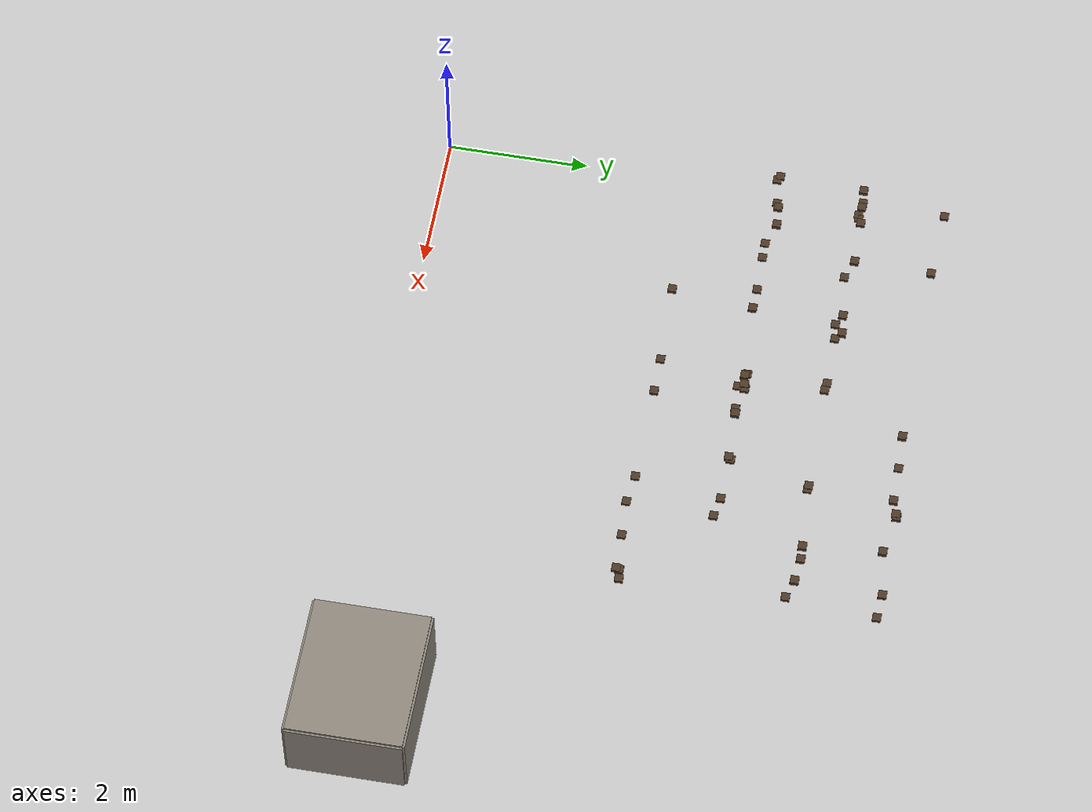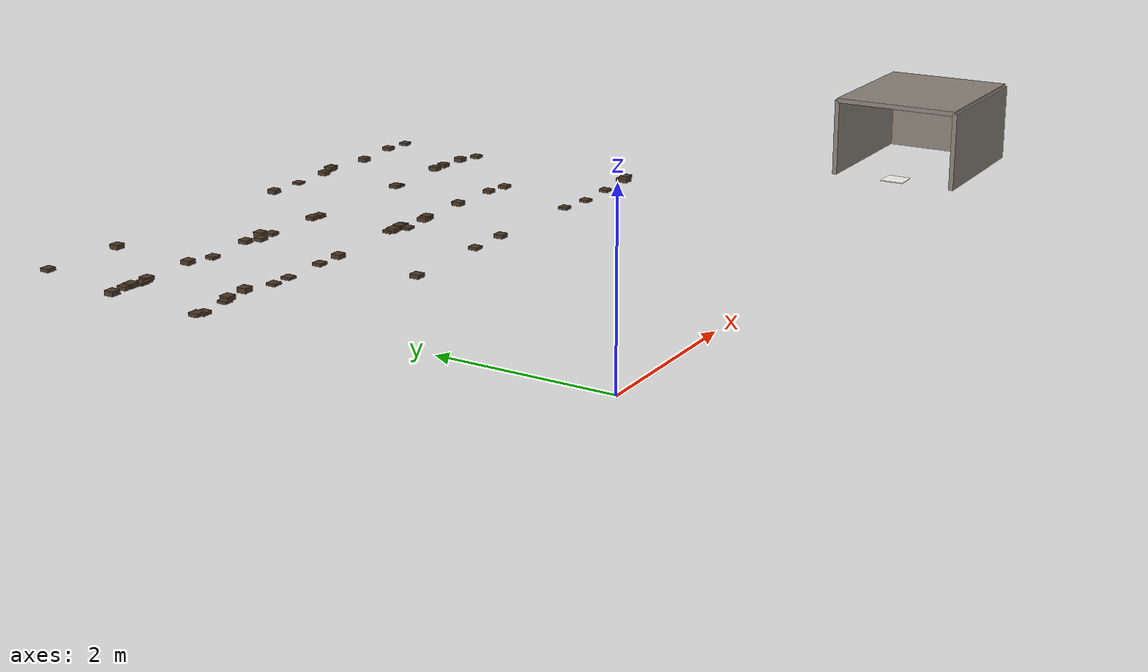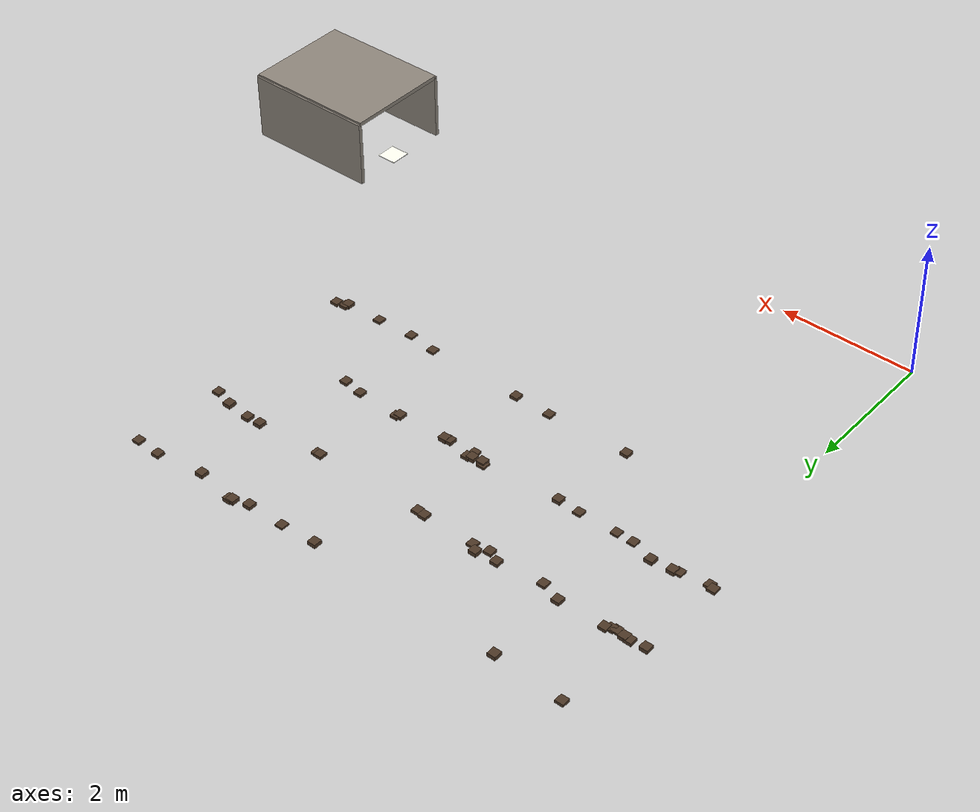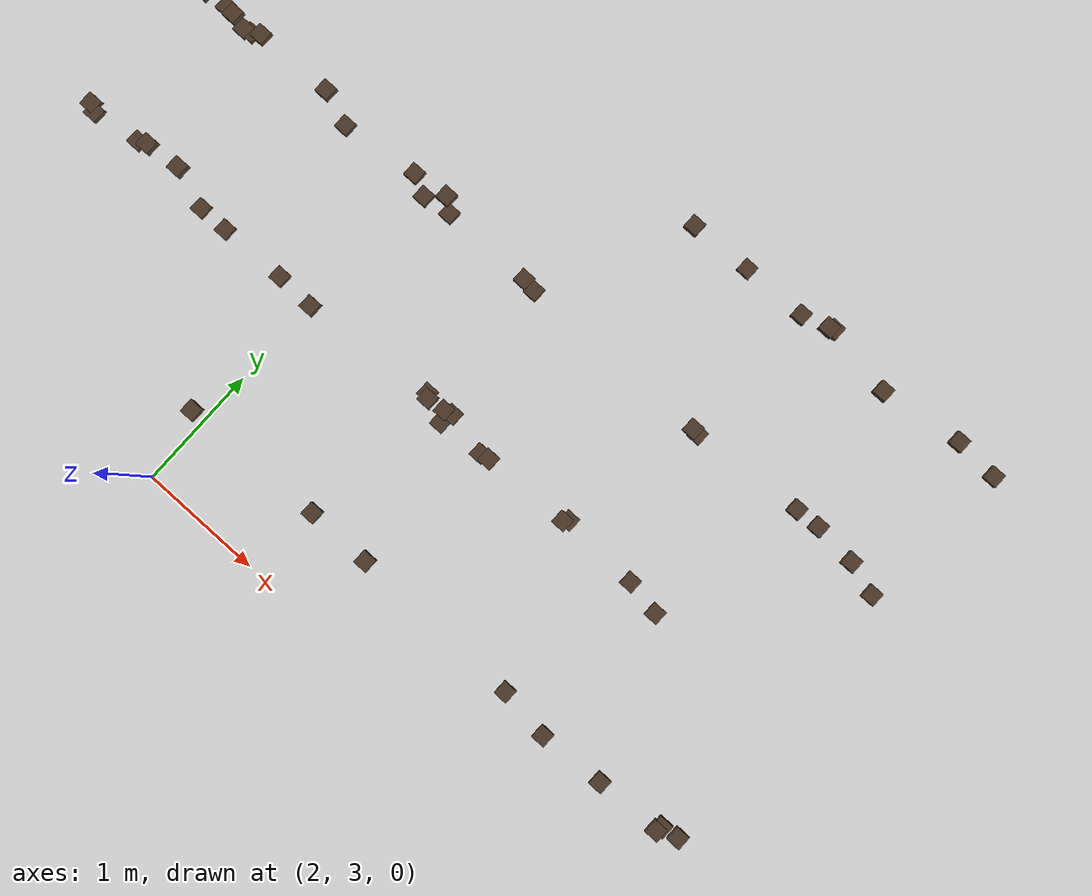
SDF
<sdf version="1.9">
 <world name="field_main">
  <model name="clod_3_1">
   <static>true</static>
   <link name="l">
    <collision name="c">
     <geometry><box><size>0.12 0.12 0.048</size></box></geometry>
     <surface><friction><ode><mu>0.4</mu><mu2>0.4</mu2></ode></friction></surface>
    </collision>
    <visual name="v">
     <geometry><box><size>0.12 0.12 0.048</size></box></geometry>
     <material><ambient>0.22 0.16 0.11 1</ambient><diffuse>0.30 0.22 0.15 1</diffuse></material>
    </visual>
    <pose>3.617 3.611 0.024 0 0 0</pose>
   </link>
  </model>
  <model name="clod_3_2">
   <static>true</static>
   <link name="l">
    <collision name="c">
     <geometry><box><size>0.12 0.12 0.047</size></box></geometry>
     <surface><friction><ode><mu>0.4</mu><mu2>0.4</mu2></ode></friction></surface>
    </collision>
    <visual name="v">
     <geometry><box><size>0.12 0.12 0.047</size></box></geometry>
     <material><ambient>0.22 0.16 0.11 1</ambient><diffuse>0.30 0.22 0.15 1</diffuse></material>
    </visual>
    <pose>6.555 3.635 0.023 0 0 0</pose>
   </link>
  </model>
  <model name="clod_3_3">
   <static>true</static>
   <link name="l">
    <collision name="c">
     <geometry><box><size>0.12 0.12 0.037</size></box></geometry>
     <surface><friction><ode><mu>0.4</mu><mu2>0.4</mu2></ode></friction></surface>
    </collision>
    <visual name="v">
     <geometry><box><size>0.12 0.12 0.037</size></box></geometry>
     <material><ambient>0.22 0.16 0.11 1</ambient><diffuse>0.30 0.22 0.15 1</diffuse></material>
    </visual>
    <pose>6.002 3.572 0.018 0 0 0</pose>
   </link>
  </model>
  <model name="clod_3_4">
   <static>true</static>
   <link name="l">
    <collision name="c">
     <geometry><box><size>0.12 0.12 0.048</size></box></geometry>
     <surface><friction><ode><mu>0.4</mu><mu2>0.4</mu2></ode></friction></surface>
    </collision>
    <visual name="v">
     <geometry><box><size>0.12 0.12 0.048</size></box></geometry>
     <material><ambient>0.22 0.16 0.11 1</ambient><diffuse>0.30 0.22 0.15 1</diffuse></material>
    </visual>
    <pose>1.887 3.572 0.024 0 0 0</pose>
   </link>
  </model>
  <model name="clod_3_5">
   <static>true</static>
   <link name="l">
    <collision name="c">
     <geometry><box><size>0.12 0.12 0.035</size></box></geometry>
     <surface><friction><ode><mu>0.4</mu><mu2>0.4</mu2></ode></friction></surface>
    </collision>
    <visual name="v">
     <geometry><box><size>0.12 0.12 0.035</size></box></geometry>
     <material><ambient>0.22 0.16 0.11 1</ambient><diffuse>0.30 0.22 0.15 1</diffuse></material>
    </visual>
    <pose>5.041 3.594 0.017 0 0 0</pose>
   </link>
  </model>
  <model name="clod_3_6">
   <static>true</static>
   <link name="l">
    <collision name="c">
     <geometry><box><size>0.12 0.12 0.049</size></box></geometry>
     <surface><friction><ode><mu>0.4</mu><mu2>0.4</mu2></ode></friction></surface>
    </collision>
    <visual name="v">
     <geometry><box><size>0.12 0.12 0.049</size></box></geometry>
     <material><ambient>0.22 0.16 0.11 1</ambient><diffuse>0.30 0.22 0.15 1</diffuse></material>
    </visual>
    <pose>6.540 3.590 0.024 0 0 0</pose>
   </link>
  </model>
  <model name="clod_3_7">
   <static>true</static>
   <link name="l">
    <collision name="c">
     <geometry><box><size>0.12 0.12 0.037</size></box></geometry>
     <surface><friction><ode><mu>0.4</mu><mu2>0.4</mu2></ode></friction></surface>
    </collision>
    <visual name="v">
     <geometry><box><size>0.12 0.12 0.037</size></box></geometry>
     <material><ambient>0.22 0.16 0.11 1</ambient><diffuse>0.30 0.22 0.15 1</diffuse></material>
    </visual>
    <pose>3.079 3.610 0.018 0 0 0</pose>
   </link>
  </model>
  <model name="clod_3_8">
   <static>true</static>
   <link name="l">
    <collision name="c">
     <geometry><box><size>0.12 0.12 0.044</size></box></geometry>
     <surface><friction><ode><mu>0.4</mu><mu2>0.4</mu2></ode></friction></surface>
    </collision>
    <visual name="v">
     <geometry><box><size>0.12 0.12 0.044</size></box></geometry>
     <material><ambient>0.22 0.16 0.11 1</ambient><diffuse>0.30 0.22 0.15 1</diffuse></material>
    </visual>
    <pose>6.696 3.656 0.022 0 0 0</pose>
   </link>
  </model>
  <model name="clod_3_9">
   <static>true</static>
   <link name="l">
    <collision name="c">
     <geometry><box><size>0.12 0.12 0.034</size></box></geometry>
     <surface><friction><ode><mu>0.4</mu><mu2>0.4</mu2></ode></friction></surface>
    </collision>
    <visual name="v">
     <geometry><box><size>0.12 0.12 0.034</size></box></geometry>
     <material><ambient>0.22 0.16 0.11 1</ambient><diffuse>0.30 0.22 0.15 1</diffuse></material>
    </visual>
    <pose>5.462 3.542 0.017 0 0 0</pose>
   </link>
  </model>
  <model name="clod_3_10">
   <static>true</static>
   <link name="l">
    <collision name="c">
     <geometry><box><size>0.12 0.12 0.034</size></box></geometry>
     <surface><friction><ode><mu>0.4</mu><mu2>0.4</mu2></ode></friction></surface>
    </collision>
    <visual name="v">
     <geometry><box><size>0.12 0.12 0.034</size></box></geometry>
     <material><ambient>0.22 0.16 0.11 1</ambient><diffuse>0.30 0.22 0.15 1</diffuse></material>
    </visual>
    <pose>3.336 4.750 0.017 0 0 0</pose>
   </link>
  </model>
  <model name="clod_3_11">
   <static>true</static>
   <link name="l">
    <collision name="c">
     <geometry><box><size>0.12 0.12 0.043</size></box></geometry>
     <surface><friction><ode><mu>0.4</mu><mu2>0.4</mu2></ode></friction></surface>
    </collision>
    <visual name="v">
     <geometry><box><size>0.12 0.12 0.043</size></box></geometry>
     <material><ambient>0.22 0.16 0.11 1</ambient><diffuse>0.30 0.22 0.15 1</diffuse></material>
    </visual>
    <pose>5.192 4.817 0.021 0 0 0</pose>
   </link>
  </model>
  <model name="clod_3_12">
   <static>true</static>
   <link name="l">
    <collision name="c">
     <geometry><box><size>0.12 0.12 0.059</size></box></geometry>
     <surface><friction><ode><mu>0.4</mu><mu2>0.4</mu2></ode></friction></surface>
    </collision>
    <visual name="v">
     <geometry><box><size>0.12 0.12 0.059</size></box></geometry>
     <material><ambient>0.22 0.16 0.11 1</ambient><diffuse>0.30 0.22 0.15 1</diffuse></material>
    </visual>
    <pose>0.541 4.856 0.030 0 0 0</pose>
   </link>
  </model>
  <model name="clod_3_13">
   <static>true</static>
   <link name="l">
    <collision name="c">
     <geometry><box><size>0.12 0.12 0.044</size></box></geometry>
     <surface><friction><ode><mu>0.4</mu><mu2>0.4</mu2></ode></friction></surface>
    </collision>
    <visual name="v">
     <geometry><box><size>0.12 0.12 0.044</size></box></geometry>
     <material><ambient>0.22 0.16 0.11 1</ambient><diffuse>0.30 0.22 0.15 1</diffuse></material>
    </visual>
    <pose>3.363 4.856 0.022 0 0 0</pose>
   </link>
  </model>
  <model name="clod_3_14">
   <static>true</static>
   <link name="l">
    <collision name="c">
     <geometry><box><size>0.12 0.12 0.040</size></box></geometry>
     <surface><friction><ode><mu>0.4</mu><mu2>0.4</mu2></ode></friction></surface>
    </collision>
    <visual name="v">
     <geometry><box><size>0.12 0.12 0.040</size></box></geometry>
     <material><ambient>0.22 0.16 0.11 1</ambient><diffuse>0.30 0.22 0.15 1</diffuse></material>
    </visual>
    <pose>4.546 4.850 0.020 0 0 0</pose>
   </link>
  </model>
  <model name="clod_3_15">
   <static>true</static>
   <link name="l">
    <collision name="c">
     <geometry><box><size>0.12 0.12 0.031</size></box></geometry>
     <surface><friction><ode><mu>0.4</mu><mu2>0.4</mu2></ode></friction></surface>
    </collision>
    <visual name="v">
     <geometry><box><size>0.12 0.12 0.031</size></box></geometry>
     <material><ambient>0.22 0.16 0.11 1</ambient><diffuse>0.30 0.22 0.15 1</diffuse></material>
    </visual>
    <pose>1.130 4.744 0.016 0 0 0</pose>
   </link>
  </model>
  <model name="clod_3_16">
   <static>true</static>
   <link name="l">
    <collision name="c">
     <geometry><box><size>0.12 0.12 0.033</size></box></geometry>
     <surface><friction><ode><mu>0.4</mu><mu2>0.4</mu2></ode></friction></surface>
    </collision>
    <visual name="v">
     <geometry><box><size>0.12 0.12 0.033</size></box></geometry>
     <material><ambient>0.22 0.16 0.11 1</ambient><diffuse>0.30 0.22 0.15 1</diffuse></material>
    </visual>
    <pose>3.114 4.851 0.017 0 0 0</pose>
   </link>
  </model>
  <model name="clod_3_17">
   <static>true</static>
   <link name="l">
    <collision name="c">
     <geometry><box><size>0.12 0.12 0.033</size></box></geometry>
     <surface><friction><ode><mu>0.4</mu><mu2>0.4</mu2></ode></friction></surface>
    </collision>
    <visual name="v">
     <geometry><box><size>0.12 0.12 0.033</size></box></geometry>
     <material><ambient>0.22 0.16 0.11 1</ambient><diffuse>0.30 0.22 0.15 1</diffuse></material>
    </visual>
    <pose>0.166 4.800 0.017 0 0 0</pose>
   </link>
  </model>
  <model name="clod_3_18">
   <static>true</static>
   <link name="l">
    <collision name="c">
     <geometry><box><size>0.12 0.12 0.030</size></box></geometry>
     <surface><friction><ode><mu>0.4</mu><mu2>0.4</mu2></ode></friction></surface>
    </collision>
    <visual name="v">
     <geometry><box><size>0.12 0.12 0.030</size></box></geometry>
     <material><ambient>0.22 0.16 0.11 1</ambient><diffuse>0.30 0.22 0.15 1</diffuse></material>
    </visual>
    <pose>0.882 4.743 0.015 0 0 0</pose>
   </link>
  </model>
  <model name="clod_3_19">
   <static>true</static>
   <link name="l">
    <collision name="c">
     <geometry><box><size>0.12 0.12 0.058</size></box></geometry>
     <surface><friction><ode><mu>0.4</mu><mu2>0.4</mu2></ode></friction></surface>
    </collision>
    <visual name="v">
     <geometry><box><size>0.12 0.12 0.058</size></box></geometry>
     <material><ambient>0.22 0.16 0.11 1</ambient><diffuse>0.30 0.22 0.15 1</diffuse></material>
    </visual>
    <pose>3.147 4.821 0.029 0 0 0</pose>
   </link>
  </model>
  <model name="clod_4_0">
   <static>true</static>
   <link name="l">
    <collision name="c">
     <geometry><box><size>0.12 0.12 0.052</size></box></geometry>
     <surface><friction><ode><mu>0.4</mu><mu2>0.4</mu2></ode></friction></surface>
    </collision>
    <visual name="v">
     <geometry><box><size>0.12 0.12 0.052</size></box></geometry>
     <material><ambient>0.22 0.16 0.11 1</ambient><diffuse>0.30 0.22 0.15 1</diffuse></material>
    </visual>
    <pose>3.716 4.778 0.026 0 0 0</pose>
   </link>
  </model>
  <model name="clod_4_1">
   <static>true</static>
   <link name="l">
    <collision name="c">
     <geometry><box><size>0.12 0.12 0.059</size></box></geometry>
     <surface><friction><ode><mu>0.4</mu><mu2>0.4</mu2></ode></friction></surface>
    </collision>
    <visual name="v">
     <geometry><box><size>0.12 0.12 0.059</size></box></geometry>
     <material><ambient>0.22 0.16 0.11 1</ambient><diffuse>0.30 0.22 0.15 1</diffuse></material>
    </visual>
    <pose>3.792 4.790 0.029 0 0 0</pose>
   </link>
  </model>
  <model name="clod_4_2">
   <static>true</static>
   <link name="l">
    <collision name="c">
     <geometry><box><size>0.12 0.12 0.057</size></box></geometry>
     <surface><friction><ode><mu>0.4</mu><mu2>0.4</mu2></ode></friction></surface>
    </collision>
    <visual name="v">
     <geometry><box><size>0.12 0.12 0.057</size></box></geometry>
     <material><ambient>0.22 0.16 0.11 1</ambient><diffuse>0.30 0.22 0.15 1</diffuse></material>
    </visual>
    <pose>3.296 4.838 0.028 0 0 0</pose>
   </link>
  </model>
  <model name="clod_4_3">
   <static>true</static>
   <link name="l">
    <collision name="c">
     <geometry><box><size>0.12 0.12 0.057</size></box></geometry>
     <surface><friction><ode><mu>0.4</mu><mu2>0.4</mu2></ode></friction></surface>
    </collision>
    <visual name="v">
     <geometry><box><size>0.12 0.12 0.057</size></box></geometry>
     <material><ambient>0.22 0.16 0.11 1</ambient><diffuse>0.30 0.22 0.15 1</diffuse></material>
    </visual>
    <pose>0.244 4.831 0.028 0 0 0</pose>
   </link>
  </model>
  <model name="clod_4_4">
   <static>true</static>
   <link name="l">
    <collision name="c">
     <geometry><box><size>0.12 0.12 0.050</size></box></geometry>
     <surface><friction><ode><mu>0.4</mu><mu2>0.4</mu2></ode></friction></surface>
    </collision>
    <visual name="v">
     <geometry><box><size>0.12 0.12 0.050</size></box></geometry>
     <material><ambient>0.22 0.16 0.11 1</ambient><diffuse>0.30 0.22 0.15 1</diffuse></material>
    </visual>
    <pose>4.511 4.816 0.025 0 0 0</pose>
   </link>
  </model>
  <model name="clod_4_5">
   <static>true</static>
   <link name="l">
    <collision name="c">
     <geometry><box><size>0.12 0.12 0.041</size></box></geometry>
     <surface><friction><ode><mu>0.4</mu><mu2>0.4</mu2></ode></friction></surface>
    </collision>
    <visual name="v">
     <geometry><box><size>0.12 0.12 0.041</size></box></geometry>
     <material><ambient>0.22 0.16 0.11 1</ambient><diffuse>0.30 0.22 0.15 1</diffuse></material>
    </visual>
    <pose>-0.297 4.776 0.020 0 0 0</pose>
   </link>
  </model>
  <model name="clod_4_6">
   <static>true</static>
   <link name="l">
    <collision name="c">
     <geometry><box><size>0.12 0.12 0.037</size></box></geometry>
     <surface><friction><ode><mu>0.4</mu><mu2>0.4</mu2></ode></friction></surface>
    </collision>
    <visual name="v">
     <geometry><box><size>0.12 0.12 0.037</size></box></geometry>
     <material><ambient>0.22 0.16 0.11 1</ambient><diffuse>0.30 0.22 0.15 1</diffuse></material>
    </visual>
    <pose>1.686 4.757 0.019 0 0 0</pose>
   </link>
  </model>
  <model name="clod_4_7">
   <static>true</static>
   <link name="l">
    <collision name="c">
     <geometry><box><size>0.12 0.12 0.054</size></box></geometry>
     <surface><friction><ode><mu>0.4</mu><mu2>0.4</mu2></ode></friction></surface>
    </collision>
    <visual name="v">
     <geometry><box><size>0.12 0.12 0.054</size></box></geometry>
     <material><ambient>0.22 0.16 0.11 1</ambient><diffuse>0.30 0.22 0.15 1</diffuse></material>
    </visual>
    <pose>2.011 4.747 0.027 0 0 0</pose>
   </link>
  </model>
  <model name="clod_4_8">
   <static>true</static>
   <link name="l">
    <collision name="c">
     <geometry><box><size>0.12 0.12 0.039</size></box></geometry>
     <surface><friction><ode><mu>0.4</mu><mu2>0.4</mu2></ode></friction></surface>
    </collision>
    <visual name="v">
     <geometry><box><size>0.12 0.12 0.039</size></box></geometry>
     <material><ambient>0.22 0.16 0.11 1</ambient><diffuse>0.30 0.22 0.15 1</diffuse></material>
    </visual>
    <pose>-0.231 4.742 0.019 0 0 0</pose>
   </link>
  </model>
  <model name="clod_4_9">
   <static>true</static>
   <link name="l">
    <collision name="c">
     <geometry><box><size>0.12 0.12 0.042</size></box></geometry>
     <surface><friction><ode><mu>0.4</mu><mu2>0.4</mu2></ode></friction></surface>
    </collision>
    <visual name="v">
     <geometry><box><size>0.12 0.12 0.042</size></box></geometry>
     <material><ambient>0.22 0.16 0.11 1</ambient><diffuse>0.30 0.22 0.15 1</diffuse></material>
    </visual>
    <pose>5.483 4.766 0.021 0 0 0</pose>
   </link>
  </model>
  <model name="clod_4_10">
   <static>true</static>
   <link name="l">
    <collision name="c">
     <geometry><box><size>0.12 0.12 0.053</size></box></geometry>
     <surface><friction><ode><mu>0.4</mu><mu2>0.4</mu2></ode></friction></surface>
    </collision>
    <visual name="v">
     <geometry><box><size>0.12 0.12 0.053</size></box></geometry>
     <material><ambient>0.22 0.16 0.11 1</ambient><diffuse>0.30 0.22 0.15 1</diffuse></material>
    </visual>
    <pose>0.973 6.048 0.026 0 0 0</pose>
   </link>
  </model>
  <model name="clod_4_11">
   <static>true</static>
   <link name="l">
    <collision name="c">
     <geometry><box><size>0.12 0.12 0.042</size></box></geometry>
     <surface><friction><ode><mu>0.4</mu><mu2>0.4</mu2></ode></friction></surface>
    </collision>
    <visual name="v">
     <geometry><box><size>0.12 0.12 0.042</size></box></geometry>
     <material><ambient>0.22 0.16 0.11 1</ambient><diffuse>0.30 0.22 0.15 1</diffuse></material>
    </visual>
    <pose>2.082 5.940 0.021 0 0 0</pose>
   </link>
  </model>
  <model name="clod_4_12">
   <static>true</static>
   <link name="l">
    <collision name="c">
     <geometry><box><size>0.12 0.12 0.045</size></box></geometry>
     <surface><friction><ode><mu>0.4</mu><mu2>0.4</mu2></ode></friction></surface>
    </collision>
    <visual name="v">
     <geometry><box><size>0.12 0.12 0.045</size></box></geometry>
     <material><ambient>0.22 0.16 0.11 1</ambient><diffuse>0.30 0.22 0.15 1</diffuse></material>
    </visual>
    <pose>0.305 6.035 0.022 0 0 0</pose>
   </link>
  </model>
  <model name="clod_4_13">
   <static>true</static>
   <link name="l">
    <collision name="c">
     <geometry><box><size>0.12 0.12 0.046</size></box></geometry>
     <surface><friction><ode><mu>0.4</mu><mu2>0.4</mu2></ode></friction></surface>
    </collision>
    <visual name="v">
     <geometry><box><size>0.12 0.12 0.046</size></box></geometry>
     <material><ambient>0.22 0.16 0.11 1</ambient><diffuse>0.30 0.22 0.15 1</diffuse></material>
    </visual>
    <pose>-0.041 6.017 0.023 0 0 0</pose>
   </link>
  </model>
  <model name="clod_4_14">
   <static>true</static>
   <link name="l">
    <collision name="c">
     <geometry><box><size>0.12 0.12 0.056</size></box></geometry>
     <surface><friction><ode><mu>0.4</mu><mu2>0.4</mu2></ode></friction></surface>
    </collision>
    <visual name="v">
     <geometry><box><size>0.12 0.12 0.056</size></box></geometry>
     <material><ambient>0.22 0.16 0.11 1</ambient><diffuse>0.30 0.22 0.15 1</diffuse></material>
    </visual>
    <pose>-0.253 5.995 0.028 0 0 0</pose>
   </link>
  </model>
  <model name="clod_4_15">
   <static>true</static>
   <link name="l">
    <collision name="c">
     <geometry><box><size>0.12 0.12 0.060</size></box></geometry>
     <surface><friction><ode><mu>0.4</mu><mu2>0.4</mu2></ode></friction></surface>
    </collision>
    <visual name="v">
     <geometry><box><size>0.12 0.12 0.060</size></box></geometry>
     <material><ambient>0.22 0.16 0.11 1</ambient><diffuse>0.30 0.22 0.15 1</diffuse></material>
    </visual>
    <pose>2.213 6.055 0.030 0 0 0</pose>
   </link>
  </model>
  <model name="clod_4_16">
   <static>true</static>
   <link name="l">
    <collision name="c">
     <geometry><box><size>0.12 0.12 0.052</size></box></geometry>
     <surface><friction><ode><mu>0.4</mu><mu2>0.4</mu2></ode></friction></surface>
    </collision>
    <visual name="v">
     <geometry><box><size>0.12 0.12 0.052</size></box></geometry>
     <material><ambient>0.22 0.16 0.11 1</ambient><diffuse>0.30 0.22 0.15 1</diffuse></material>
    </visual>
    <pose>5.963 6.058 0.026 0 0 0</pose>
   </link>
  </model>
  <model name="clod_4_17">
   <static>true</static>
   <link name="l">
    <collision name="c">
     <geometry><box><size>0.12 0.12 0.043</size></box></geometry>
     <surface><friction><ode><mu>0.4</mu><mu2>0.4</mu2></ode></friction></surface>
    </collision>
    <visual name="v">
     <geometry><box><size>0.12 0.12 0.043</size></box></geometry>
     <material><ambient>0.22 0.16 0.11 1</ambient><diffuse>0.30 0.22 0.15 1</diffuse></material>
    </visual>
    <pose>4.781 5.983 0.022 0 0 0</pose>
   </link>
  </model>
  <model name="clod_4_18">
   <static>true</static>
   <link name="l">
    <collision name="c">
     <geometry><box><size>0.12 0.12 0.032</size></box></geometry>
     <surface><friction><ode><mu>0.4</mu><mu2>0.4</mu2></ode></friction></surface>
    </collision>
    <visual name="v">
     <geometry><box><size>0.12 0.12 0.032</size></box></geometry>
     <material><ambient>0.22 0.16 0.11 1</ambient><diffuse>0.30 0.22 0.15 1</diffuse></material>
    </visual>
    <pose>0.171 5.981 0.016 0 0 0</pose>
   </link>
  </model>
  <model name="clod_4_19">
   <static>true</static>
   <link name="l">
    <collision name="c">
     <geometry><box><size>0.12 0.12 0.048</size></box></geometry>
     <surface><friction><ode><mu>0.4</mu><mu2>0.4</mu2></ode></friction></surface>
    </collision>
    <visual name="v">
     <geometry><box><size>0.12 0.12 0.048</size></box></geometry>
     <material><ambient>0.22 0.16 0.11 1</ambient><diffuse>0.30 0.22 0.15 1</diffuse></material>
    </visual>
    <pose>1.913 6.023 0.024 0 0 0</pose>
   </link>
  </model>
  <model name="clod_5_0">
   <static>true</static>
   <link name="l">
    <collision name="c">
     <geometry><box><size>0.12 0.12 0.039</size></box></geometry>
     <surface><friction><ode><mu>0.4</mu><mu2>0.4</mu2></ode></friction></surface>
    </collision>
    <visual name="v">
     <geometry><box><size>0.12 0.12 0.039</size></box></geometry>
     <material><ambient>0.22 0.16 0.11 1</ambient><diffuse>0.30 0.22 0.15 1</diffuse></material>
    </visual>
    <pose>2.316 5.971 0.019 0 0 0</pose>
   </link>
  </model>
  <model name="clod_5_1">
   <static>true</static>
   <link name="l">
    <collision name="c">
     <geometry><box><size>0.12 0.12 0.044</size></box></geometry>
     <surface><friction><ode><mu>0.4</mu><mu2>0.4</mu2></ode></friction></surface>
    </collision>
    <visual name="v">
     <geometry><box><size>0.12 0.12 0.044</size></box></geometry>
     <material><ambient>0.22 0.16 0.11 1</ambient><diffuse>0.30 0.22 0.15 1</diffuse></material>
    </visual>
    <pose>3.191 5.961 0.022 0 0 0</pose>
   </link>
  </model>
  <model name="clod_5_2">
   <static>true</static>
   <link name="l">
    <collision name="c">
     <geometry><box><size>0.12 0.12 0.039</size></box></geometry>
     <surface><friction><ode><mu>0.4</mu><mu2>0.4</mu2></ode></friction></surface>
    </collision>
    <visual name="v">
     <geometry><box><size>0.12 0.12 0.039</size></box></geometry>
     <material><ambient>0.22 0.16 0.11 1</ambient><diffuse>0.30 0.22 0.15 1</diffuse></material>
    </visual>
    <pose>1.267 5.945 0.020 0 0 0</pose>
   </link>
  </model>
  <model name="clod_5_3">
   <static>true</static>
   <link name="l">
    <collision name="c">
     <geometry><box><size>0.12 0.12 0.057</size></box></geometry>
     <surface><friction><ode><mu>0.4</mu><mu2>0.4</mu2></ode></friction></surface>
    </collision>
    <visual name="v">
     <geometry><box><size>0.12 0.12 0.057</size></box></geometry>
     <material><ambient>0.22 0.16 0.11 1</ambient><diffuse>0.30 0.22 0.15 1</diffuse></material>
    </visual>
    <pose>5.758 6.049 0.028 0 0 0</pose>
   </link>
  </model>
  <model name="clod_5_4">
   <static>true</static>
   <link name="l">
    <collision name="c">
     <geometry><box><size>0.12 0.12 0.042</size></box></geometry>
     <surface><friction><ode><mu>0.4</mu><mu2>0.4</mu2></ode></friction></surface>
    </collision>
    <visual name="v">
     <geometry><box><size>0.12 0.12 0.042</size></box></geometry>
     <material><ambient>0.22 0.16 0.11 1</ambient><diffuse>0.30 0.22 0.15 1</diffuse></material>
    </visual>
    <pose>6.592 5.945 0.021 0 0 0</pose>
   </link>
  </model>
  <model name="clod_5_5">
   <static>true</static>
   <link name="l">
    <collision name="c">
     <geometry><box><size>0.12 0.12 0.032</size></box></geometry>
     <surface><friction><ode><mu>0.4</mu><mu2>0.4</mu2></ode></friction></surface>
    </collision>
    <visual name="v">
     <geometry><box><size>0.12 0.12 0.032</size></box></geometry>
     <material><ambient>0.22 0.16 0.11 1</ambient><diffuse>0.30 0.22 0.15 1</diffuse></material>
    </visual>
    <pose>0.233 5.996 0.016 0 0 0</pose>
   </link>
  </model>
  <model name="clod_5_6">
   <static>true</static>
   <link name="l">
    <collision name="c">
     <geometry><box><size>0.12 0.12 0.055</size></box></geometry>
     <surface><friction><ode><mu>0.4</mu><mu2>0.4</mu2></ode></friction></surface>
    </collision>
    <visual name="v">
     <geometry><box><size>0.12 0.12 0.055</size></box></geometry>
     <material><ambient>0.22 0.16 0.11 1</ambient><diffuse>0.30 0.22 0.15 1</diffuse></material>
    </visual>
    <pose>0.038 6.011 0.027 0 0 0</pose>
   </link>
  </model>
  <model name="clod_5_7">
   <static>true</static>
   <link name="l">
    <collision name="c">
     <geometry><box><size>0.12 0.12 0.047</size></box></geometry>
     <surface><friction><ode><mu>0.4</mu><mu2>0.4</mu2></ode></friction></surface>
    </collision>
    <visual name="v">
     <geometry><box><size>0.12 0.12 0.047</size></box></geometry>
     <material><ambient>0.22 0.16 0.11 1</ambient><diffuse>0.30 0.22 0.15 1</diffuse></material>
    </visual>
    <pose>3.077 5.976 0.024 0 0 0</pose>
   </link>
  </model>
  <model name="clod_5_8">
   <static>true</static>
   <link name="l">
    <collision name="c">
     <geometry><box><size>0.12 0.12 0.059</size></box></geometry>
     <surface><friction><ode><mu>0.4</mu><mu2>0.4</mu2></ode></friction></surface>
    </collision>
    <visual name="v">
     <geometry><box><size>0.12 0.12 0.059</size></box></geometry>
     <material><ambient>0.22 0.16 0.11 1</ambient><diffuse>0.30 0.22 0.15 1</diffuse></material>
    </visual>
    <pose>6.316 6.027 0.030 0 0 0</pose>
   </link>
  </model>
  <model name="clod_5_9">
   <static>true</static>
   <link name="l">
    <collision name="c">
     <geometry><box><size>0.12 0.12 0.030</size></box></geometry>
     <surface><friction><ode><mu>0.4</mu><mu2>0.4</mu2></ode></friction></surface>
    </collision>
    <visual name="v">
     <geometry><box><size>0.12 0.12 0.030</size></box></geometry>
     <material><ambient>0.22 0.16 0.11 1</ambient><diffuse>0.30 0.22 0.15 1</diffuse></material>
    </visual>
    <pose>4.834 5.975 0.015 0 0 0</pose>
   </link>
  </model>
  <model name="clod_5_10">
   <static>true</static>
   <link name="l">
    <collision name="c">
     <geometry><box><size>0.12 0.12 0.058</size></box></geometry>
     <surface><friction><ode><mu>0.4</mu><mu2>0.4</mu2></ode></friction></surface>
    </collision>
    <visual name="v">
     <geometry><box><size>0.12 0.12 0.058</size></box></geometry>
     <material><ambient>0.22 0.16 0.11 1</ambient><diffuse>0.30 0.22 0.15 1</diffuse></material>
    </visual>
    <pose>0.994 7.148 0.029 0 0 0</pose>
   </link>
  </model>
  <model name="clod_5_11">
   <static>true</static>
   <link name="l">
    <collision name="c">
     <geometry><box><size>0.12 0.12 0.055</size></box></geometry>
     <surface><friction><ode><mu>0.4</mu><mu2>0.4</mu2></ode></friction></surface>
    </collision>
    <visual name="v">
     <geometry><box><size>0.12 0.12 0.055</size></box></geometry>
     <material><ambient>0.22 0.16 0.11 1</ambient><diffuse>0.30 0.22 0.15 1</diffuse></material>
    </visual>
    <pose>5.074 7.254 0.028 0 0 0</pose>
   </link>
  </model>
  <model name="clod_5_12">
   <static>true</static>
   <link name="l">
    <collision name="c">
     <geometry><box><size>0.12 0.12 0.039</size></box></geometry>
     <surface><friction><ode><mu>0.4</mu><mu2>0.4</mu2></ode></friction></surface>
    </collision>
    <visual name="v">
     <geometry><box><size>0.12 0.12 0.039</size></box></geometry>
     <material><ambient>0.22 0.16 0.11 1</ambient><diffuse>0.30 0.22 0.15 1</diffuse></material>
    </visual>
    <pose>6.695 7.220 0.019 0 0 0</pose>
   </link>
  </model>
  <model name="clod_5_13">
   <static>true</static>
   <link name="l">
    <collision name="c">
     <geometry><box><size>0.12 0.12 0.053</size></box></geometry>
     <surface><friction><ode><mu>0.4</mu><mu2>0.4</mu2></ode></friction></surface>
    </collision>
    <visual name="v">
     <geometry><box><size>0.12 0.12 0.053</size></box></geometry>
     <material><ambient>0.22 0.16 0.11 1</ambient><diffuse>0.30 0.22 0.15 1</diffuse></material>
    </visual>
    <pose>4.815 7.173 0.026 0 0 0</pose>
   </link>
  </model>
  <model name="clod_5_14">
   <static>true</static>
   <link name="l">
    <collision name="c">
     <geometry><box><size>0.12 0.12 0.058</size></box></geometry>
     <surface><friction><ode><mu>0.4</mu><mu2>0.4</mu2></ode></friction></surface>
    </collision>
    <visual name="v">
     <geometry><box><size>0.12 0.12 0.058</size></box></geometry>
     <material><ambient>0.22 0.16 0.11 1</ambient><diffuse>0.30 0.22 0.15 1</diffuse></material>
    </visual>
    <pose>5.034 7.239 0.029 0 0 0</pose>
   </link>
  </model>
  <model name="clod_5_15">
   <static>true</static>
   <link name="l">
    <collision name="c">
     <geometry><box><size>0.12 0.12 0.048</size></box></geometry>
     <surface><friction><ode><mu>0.4</mu><mu2>0.4</mu2></ode></friction></surface>
    </collision>
    <visual name="v">
     <geometry><box><size>0.12 0.12 0.048</size></box></geometry>
     <material><ambient>0.22 0.16 0.11 1</ambient><diffuse>0.30 0.22 0.15 1</diffuse></material>
    </visual>
    <pose>6.331 7.243 0.024 0 0 0</pose>
   </link>
  </model>
  <model name="clod_5_16">
   <static>true</static>
   <link name="l">
    <collision name="c">
     <geometry><box><size>0.12 0.12 0.030</size></box></geometry>
     <surface><friction><ode><mu>0.4</mu><mu2>0.4</mu2></ode></friction></surface>
    </collision>
    <visual name="v">
     <geometry><box><size>0.12 0.12 0.030</size></box></geometry>
     <material><ambient>0.22 0.16 0.11 1</ambient><diffuse>0.30 0.22 0.15 1</diffuse></material>
    </visual>
    <pose>4.280 7.166 0.015 0 0 0</pose>
   </link>
  </model>
  <model name="clod_5_17">
   <static>true</static>
   <link name="l">
    <collision name="c">
     <geometry><box><size>0.12 0.12 0.058</size></box></geometry>
     <surface><friction><ode><mu>0.4</mu><mu2>0.4</mu2></ode></friction></surface>
    </collision>
    <visual name="v">
     <geometry><box><size>0.12 0.12 0.058</size></box></geometry>
     <material><ambient>0.22 0.16 0.11 1</ambient><diffuse>0.30 0.22 0.15 1</diffuse></material>
    </visual>
    <pose>3.764 7.144 0.029 0 0 0</pose>
   </link>
  </model>
  <model name="clod_5_18">
   <static>true</static>
   <link name="l">
    <collision name="c">
     <geometry><box><size>0.12 0.12 0.042</size></box></geometry>
     <surface><friction><ode><mu>0.4</mu><mu2>0.4</mu2></ode></friction></surface>
    </collision>
    <visual name="v">
     <geometry><box><size>0.12 0.12 0.042</size></box></geometry>
     <material><ambient>0.22 0.16 0.11 1</ambient><diffuse>0.30 0.22 0.15 1</diffuse></material>
    </visual>
    <pose>-0.015 7.196 0.021 0 0 0</pose>
   </link>
  </model>
  <model name="clod_5_19">
   <static>true</static>
   <link name="l">
    <collision name="c">
     <geometry><box><size>0.12 0.12 0.058</size></box></geometry>
     <surface><friction><ode><mu>0.4</mu><mu2>0.4</mu2></ode></friction></surface>
    </collision>
    <visual name="v">
     <geometry><box><size>0.12 0.12 0.058</size></box></geometry>
     <material><ambient>0.22 0.16 0.11 1</ambient><diffuse>0.30 0.22 0.15 1</diffuse></material>
    </visual>
    <pose>5.655 7.149 0.029 0 0 0</pose>
   </link>
  </model>
  <model name="home_base">
   <static>true</static>
   <link name="link">
    <collision name="c0">
     <pose>10.300 0.600 0.500 0 0 0</pose>
     <geometry><box><size>0.060 1.600 1.000</size></box></geometry>
    </collision>
    <visual name="v0">
     <pose>10.300 0.600 0.500 0 0 0</pose>
     <geometry><box><size>0.060 1.600 1.000</size></box></geometry>
     <material><ambient>0.35 0.33 0.30 1</ambient><diffuse>0.55 0.52 0.48 1</diffuse></material>
    </visual>
    <collision name="c1">
     <pose>9.300 -0.200 0.500 0 0 0</pose>
     <geometry><box><size>2.000 0.060 1.000</size></box></geometry>
    </collision>
    <visual name="v1">
     <pose>9.300 -0.200 0.500 0 0 0</pose>
     <geometry><box><size>2.000 0.060 1.000</size></box></geometry>
     <material><ambient>0.35 0.33 0.30 1</ambient><diffuse>0.55 0.52 0.48 1</diffuse></material>
    </visual>
    <collision name="c2">
     <pose>9.300 1.400 0.500 0 0 0</pose>
     <geometry><box><size>2.000 0.060 1.000</size></box></geometry>
    </collision>
    <visual name="v2">
     <pose>9.300 1.400 0.500 0 0 0</pose>
     <geometry><box><size>2.000 0.060 1.000</size></box></geometry>
     <material><ambient>0.35 0.33 0.30 1</ambient><diffuse>0.55 0.52 0.48 1</diffuse></material>
    </visual>
    <collision name="c3">
     <pose>9.300 0.600 1.000 0 0 0</pose>
     <geometry><box><size>2.000 1.600 0.060</size></box></geometry>
    </collision>
    <visual name="v3">
     <pose>9.300 0.600 1.000 0 0 0</pose>
     <geometry><box><size>2.000 1.600 0.060</size></box></geometry>
     <material><ambient>0.35 0.33 0.30 1</ambient><diffuse>0.55 0.52 0.48 1</diffuse></material>
    </visual>
    <visual name="dock_marker">
     <pose>8.450 0.600 0.005 0 0 0</pose>
     <geometry><box><size>0.30 0.30 0.01</size></box></geometry>
     <material><ambient>0.9 0.9 0.85 1</ambient><diffuse>1 1 0.95 1</diffuse></material>
    </visual>
   </link>
  </model>
 </world>
</sdf>
